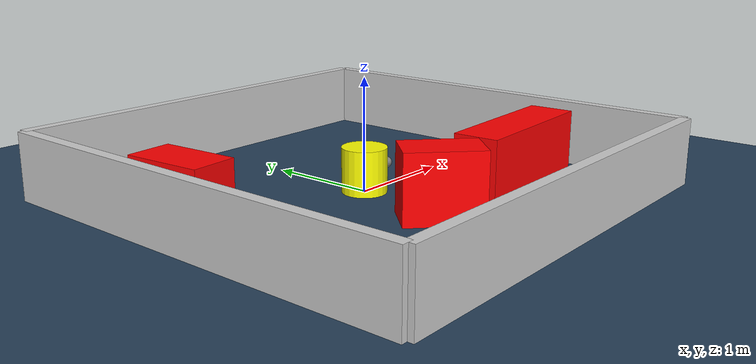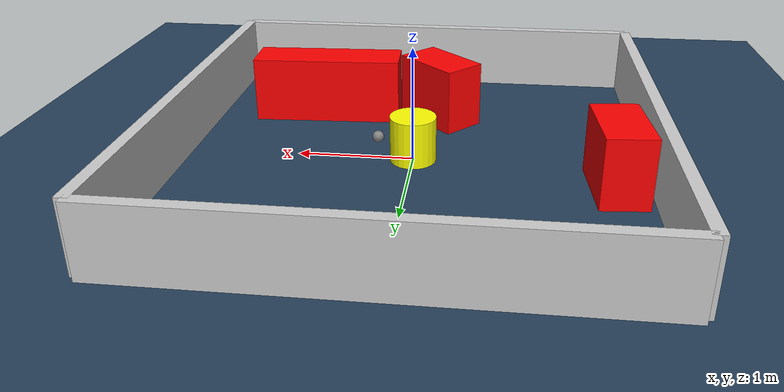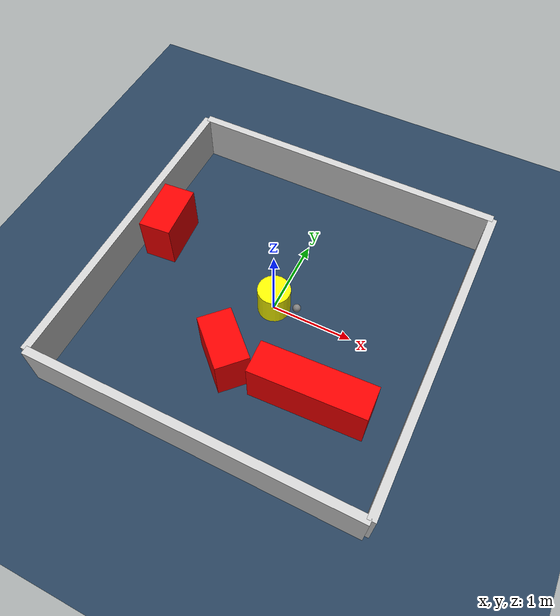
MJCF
<?xml version="1.0" ?>
<mujoco model="generated_environment">
  <option timestep="0.01" integrator="RK4" cone="elliptic"/>
  <default>
    <geom density="1"/>
  </default>
  <asset>
    <texture builtin="gradient" height="3072" rgb1="0.3 0.5 0.7" rgb2="0 0 0" type="skybox" width="512"/>
    <texture builtin="checker" height="300" mark="edge" markrgb="0.8 0.8 0.8" name="groundplane" rgb1="0.2 0.3 0.4" rgb2="0.1 0.2 0.3" type="2d" width="300"/>
    <material name="groundplane" reflectance="0.2" texrepeat="5 5" texture="groundplane" texuniform="true"/>
    <material name="robot" rgba="0.0 1.0 0.0 1"/>
  </asset>
  <worldbody>
    <light dir="0 0 -1" directional="true" pos="0 0 1.5"/>
    <geom condim="4" friction="1.0 0.005 0.001" material="groundplane" name="floor" size="0 0 0.05" type="plane"/>
    <body name="walls">
      <geom name="wall_1" condim="4" pos="-2.0 0.0 0.3" rgba="0.800000011920929 0.800000011920929 0.800000011920929 1.0" size="0.05 2.0 0.3" type="box"/>
      <geom name="wall_2" condim="4" pos="2.0 0.0 0.3" rgba="0.800000011920929 0.800000011920929 0.800000011920929 1.0" size="0.05 2.0 0.3" type="box"/>
      <geom name="wall_3" condim="4" pos="0.0 -2.0 0.3" rgba="0.800000011920929 0.800000011920929 0.800000011920929 1.0" size="2.0 0.05 0.3" type="box"/>
      <geom name="wall_4" condim="4" pos="0.0 2.0 0.3" rgba="0.800000011920929 0.800000011920929 0.800000011920929 1.0" size="2.0 0.05 0.3" type="box"/>
    </body>
    <body name="robot">
      <joint name="joint_x" type="slide" pos="0 0 0" axis="1 0 0"/>
      <joint name="joint_y" type="slide" pos="0 0 0" axis="0 1 0"/>
      <geom name="robot" type="sphere" pos="0.3 0.0 0.2" size="0.05" mass="5." friction="1.0 0.005 0.0001" condim="4" rgba="0.5 0.5 0.5 1.0"/>
      <site name="sensor_ball"/>
    </body>
    <body name="obstacle_movable_1">
      <geom name="obstacle_movable_1" condim="4" pos="0.0 0.0 0.2" euler="0 0 0.0" friction="1.0 0.005 0.001" rgba="1.0 1.0 0.0 1.0" size="0.2 0.2 0.0" type="cylinder" mass="0.1"/>
      <joint type="free"/>
    </body>
    <body name="obstacle_2_static">
      <geom name="obstacle_2_static" condim="4" pos="-0.16222345602365507 -0.9219308235417554 0.3" euler="0 0 316.3349237957844" friction="1.0 0.005 0.001" rgba="1 0 0 1" size="0.3355526515144505 0.2 0.3" type="box"/>
    </body>
    <body name="obstacle_3_static">
      <geom name="obstacle_3_static" condim="4" pos="-1.6700640007914078 0.37389053083605694 0.3" euler="0 0 274.79130452479376" friction="1.0 0.005 0.001" rgba="1 0 0 1" size="0.349909343863331 0.2 0.3" type="box"/>
    </body>
    <body name="obstacle_4_static">
      <geom name="obstacle_4_static" condim="4" pos="0.9154826274542711 -0.9357890476378635 0.3" euler="0 0 182.61401035597115" friction="1.0 0.005 0.001" rgba="1 0 0 1" size="0.6826647564374411 0.2 0.3" type="box"/>
    </body>
  </worldbody>
  <actuator>
    <motor name="actuator_x" joint="joint_x" gear="1" ctrlrange="-1 1"/>
    <motor name="actuator_y" joint="joint_y" gear="1" ctrlrange="-1 1"/>
  </actuator>
</mujoco>
